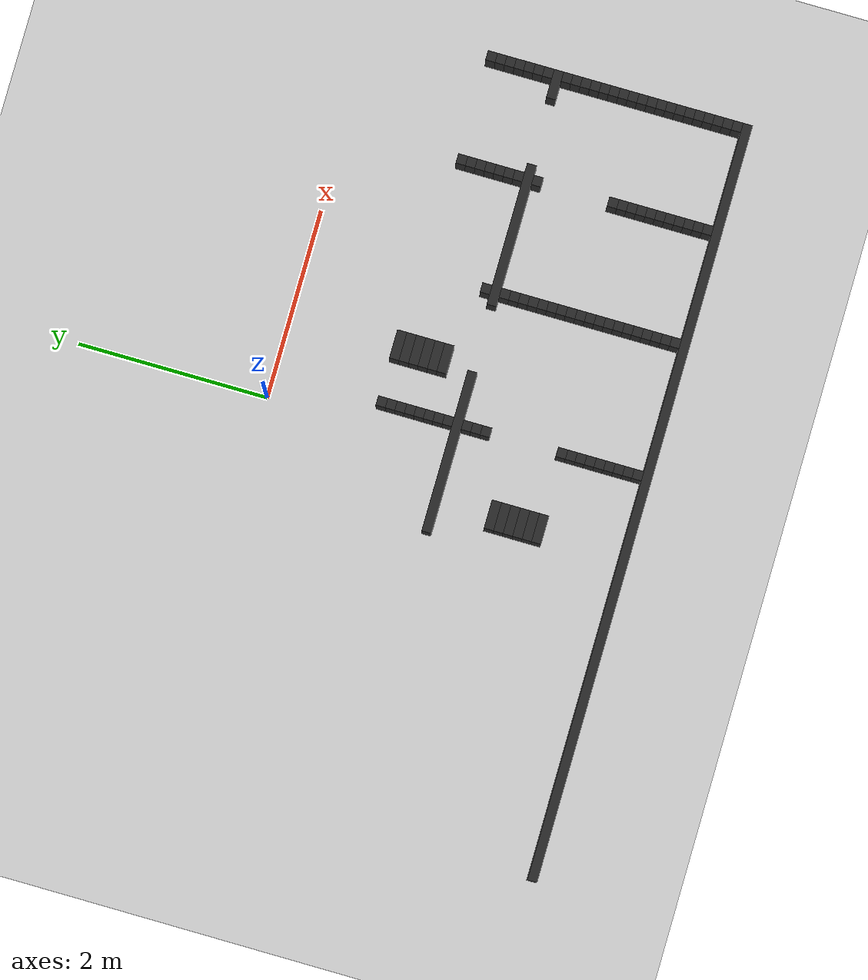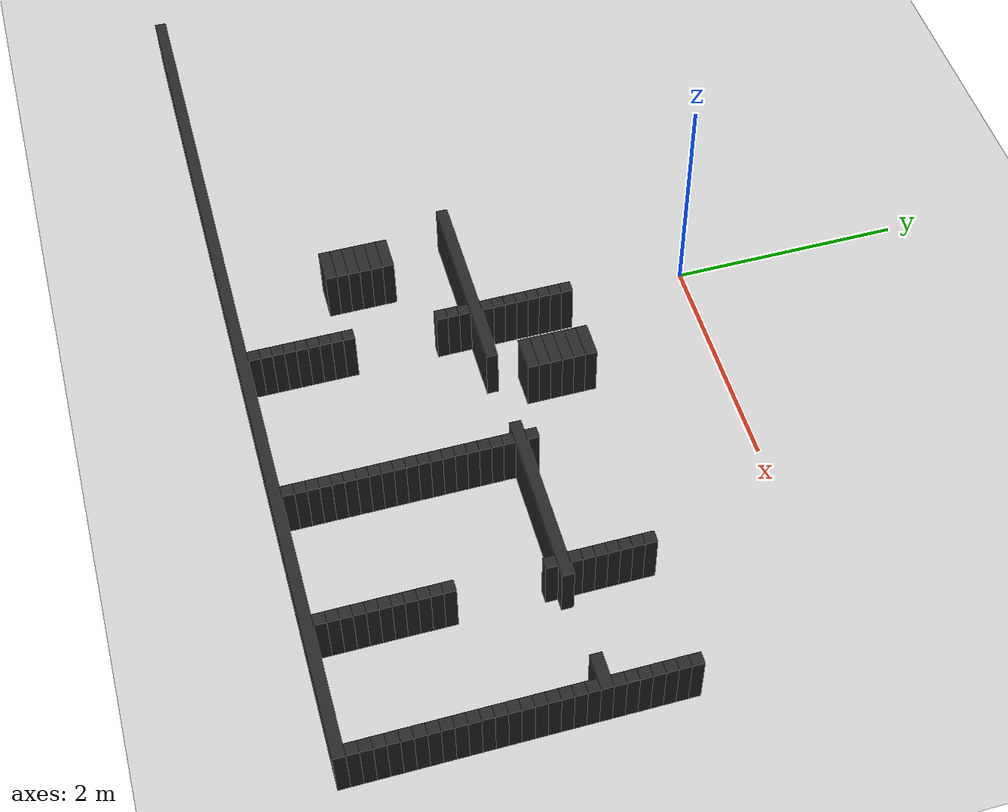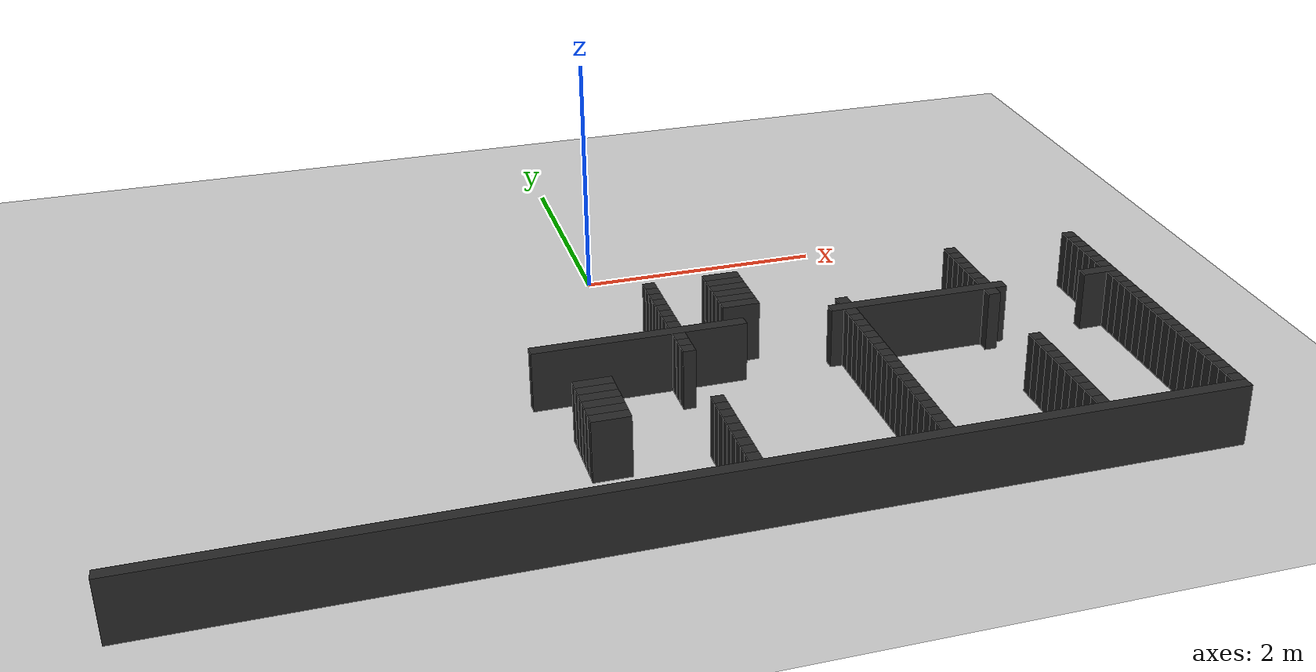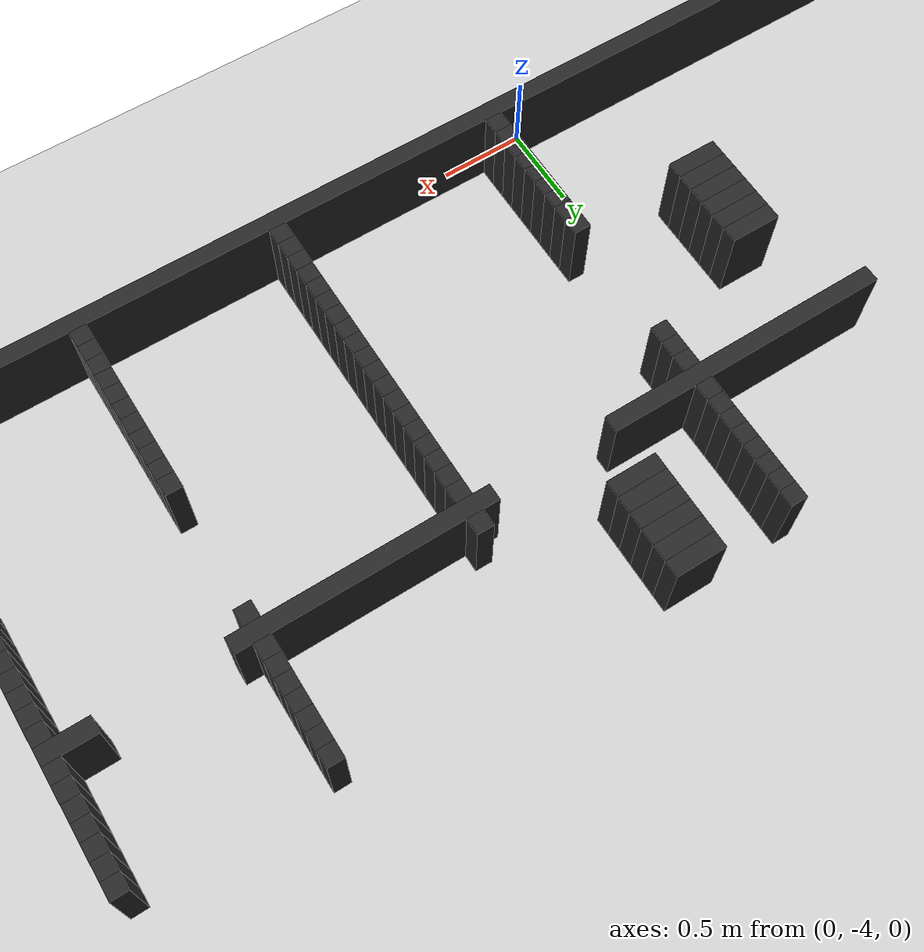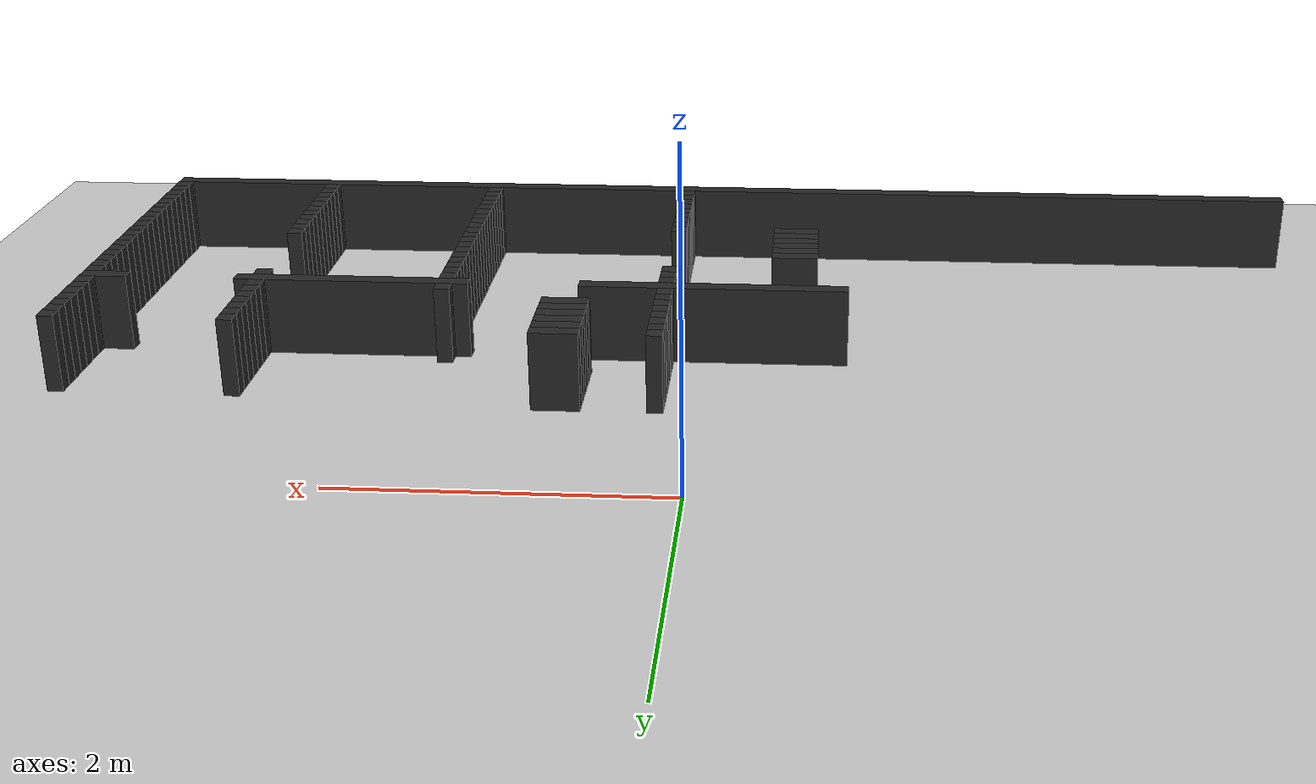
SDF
<sdf version="1.6">
 <world name="stress_maze_world">
  <include><uri>model://sun</uri></include>
  <include><uri>model://ground_plane</uri></include>
  <model name="wall_000_000">
   <static>true</static>
   <pose>0.00000 -3.95000 0.25 0 0 0</pose>
   <link name="link">
    <collision name="collision"><geometry><box><size>8.00000 0.10000 0.5</size></box></geometry></collision>
    <visual name="visual">
     <geometry><box><size>8.00000 0.10000 0.5</size></box></geometry>
     <material><ambient>0.12 0.12 0.12 1</ambient><diffuse>0.15 0.15 0.15 1</diffuse></material>
    </visual>
   </link>
  </model>
  <model name="wall_001_042">
   <static>true</static>
   <pose>0.25000 -3.85000 0.25 0 0 0</pose>
   <link name="link">
    <collision name="collision"><geometry><box><size>0.10000 0.10000 0.5</size></box></geometry></collision>
    <visual name="visual">
     <geometry><box><size>0.10000 0.10000 0.5</size></box></geometry>
     <material><ambient>0.12 0.12 0.12 1</ambient><diffuse>0.15 0.15 0.15 1</diffuse></material>
    </visual>
   </link>
  </model>
  <model name="wall_001_056">
   <static>true</static>
   <pose>1.65000 -3.85000 0.25 0 0 0</pose>
   <link name="link">
    <collision name="collision"><geometry><box><size>0.10000 0.10000 0.5</size></box></geometry></collision>
    <visual name="visual">
     <geometry><box><size>0.10000 0.10000 0.5</size></box></geometry>
     <material><ambient>0.12 0.12 0.12 1</ambient><diffuse>0.15 0.15 0.15 1</diffuse></material>
    </visual>
   </link>
  </model>
  <model name="wall_001_068">
   <static>true</static>
   <pose>2.85000 -3.85000 0.25 0 0 0</pose>
   <link name="link">
    <collision name="collision"><geometry><box><size>0.10000 0.10000 0.5</size></box></geometry></collision>
    <visual name="visual">
     <geometry><box><size>0.10000 0.10000 0.5</size></box></geometry>
     <material><ambient>0.12 0.12 0.12 1</ambient><diffuse>0.15 0.15 0.15 1</diffuse></material>
    </visual>
   </link>
  </model>
  <model name="wall_001_079">
   <static>true</static>
   <pose>3.95000 -3.85000 0.25 0 0 0</pose>
   <link name="link">
    <collision name="collision"><geometry><box><size>0.10000 0.10000 0.5</size></box></geometry></collision>
    <visual name="visual">
     <geometry><box><size>0.10000 0.10000 0.5</size></box></geometry>
     <material><ambient>0.12 0.12 0.12 1</ambient><diffuse>0.15 0.15 0.15 1</diffuse></material>
    </visual>
   </link>
  </model>
  <model name="wall_002_042">
   <static>true</static>
   <pose>0.25000 -3.75000 0.25 0 0 0</pose>
   <link name="link">
    <collision name="collision"><geometry><box><size>0.10000 0.10000 0.5</size></box></geometry></collision>
    <visual name="visual">
     <geometry><box><size>0.10000 0.10000 0.5</size></box></geometry>
     <material><ambient>0.12 0.12 0.12 1</ambient><diffuse>0.15 0.15 0.15 1</diffuse></material>
    </visual>
   </link>
  </model>
  <model name="wall_002_056">
   <static>true</static>
   <pose>1.65000 -3.75000 0.25 0 0 0</pose>
   <link name="link">
    <collision name="collision"><geometry><box><size>0.10000 0.10000 0.5</size></box></geometry></collision>
    <visual name="visual">
     <geometry><box><size>0.10000 0.10000 0.5</size></box></geometry>
     <material><ambient>0.12 0.12 0.12 1</ambient><diffuse>0.15 0.15 0.15 1</diffuse></material>
    </visual>
   </link>
  </model>
  <model name="wall_002_068">
   <static>true</static>
   <pose>2.85000 -3.75000 0.25 0 0 0</pose>
   <link name="link">
    <collision name="collision"><geometry><box><size>0.10000 0.10000 0.5</size></box></geometry></collision>
    <visual name="visual">
     <geometry><box><size>0.10000 0.10000 0.5</size></box></geometry>
     <material><ambient>0.12 0.12 0.12 1</ambient><diffuse>0.15 0.15 0.15 1</diffuse></material>
    </visual>
   </link>
  </model>
  <model name="wall_002_079">
   <static>true</static>
   <pose>3.95000 -3.75000 0.25 0 0 0</pose>
   <link name="link">
    <collision name="collision"><geometry><box><size>0.10000 0.10000 0.5</size></box></geometry></collision>
    <visual name="visual">
     <geometry><box><size>0.10000 0.10000 0.5</size></box></geometry>
     <material><ambient>0.12 0.12 0.12 1</ambient><diffuse>0.15 0.15 0.15 1</diffuse></material>
    </visual>
   </link>
  </model>
  <model name="wall_003_042">
   <static>true</static>
   <pose>0.25000 -3.65000 0.25 0 0 0</pose>
   <link name="link">
    <collision name="collision"><geometry><box><size>0.10000 0.10000 0.5</size></box></geometry></collision>
    <visual name="visual">
     <geometry><box><size>0.10000 0.10000 0.5</size></box></geometry>
     <material><ambient>0.12 0.12 0.12 1</ambient><diffuse>0.15 0.15 0.15 1</diffuse></material>
    </visual>
   </link>
  </model>
  <model name="wall_003_056">
   <static>true</static>
   <pose>1.65000 -3.65000 0.25 0 0 0</pose>
   <link name="link">
    <collision name="collision"><geometry><box><size>0.10000 0.10000 0.5</size></box></geometry></collision>
    <visual name="visual">
     <geometry><box><size>0.10000 0.10000 0.5</size></box></geometry>
     <material><ambient>0.12 0.12 0.12 1</ambient><diffuse>0.15 0.15 0.15 1</diffuse></material>
    </visual>
   </link>
  </model>
  <model name="wall_003_068">
   <static>true</static>
   <pose>2.85000 -3.65000 0.25 0 0 0</pose>
   <link name="link">
    <collision name="collision"><geometry><box><size>0.10000 0.10000 0.5</size></box></geometry></collision>
    <visual name="visual">
     <geometry><box><size>0.10000 0.10000 0.5</size></box></geometry>
     <material><ambient>0.12 0.12 0.12 1</ambient><diffuse>0.15 0.15 0.15 1</diffuse></material>
    </visual>
   </link>
  </model>
  <model name="wall_003_079">
   <static>true</static>
   <pose>3.95000 -3.65000 0.25 0 0 0</pose>
   <link name="link">
    <collision name="collision"><geometry><box><size>0.10000 0.10000 0.5</size></box></geometry></collision>
    <visual name="visual">
     <geometry><box><size>0.10000 0.10000 0.5</size></box></geometry>
     <material><ambient>0.12 0.12 0.12 1</ambient><diffuse>0.15 0.15 0.15 1</diffuse></material>
    </visual>
   </link>
  </model>
  <model name="wall_004_042">
   <static>true</static>
   <pose>0.25000 -3.55000 0.25 0 0 0</pose>
   <link name="link">
    <collision name="collision"><geometry><box><size>0.10000 0.10000 0.5</size></box></geometry></collision>
    <visual name="visual">
     <geometry><box><size>0.10000 0.10000 0.5</size></box></geometry>
     <material><ambient>0.12 0.12 0.12 1</ambient><diffuse>0.15 0.15 0.15 1</diffuse></material>
    </visual>
   </link>
  </model>
  <model name="wall_004_056">
   <static>true</static>
   <pose>1.65000 -3.55000 0.25 0 0 0</pose>
   <link name="link">
    <collision name="collision"><geometry><box><size>0.10000 0.10000 0.5</size></box></geometry></collision>
    <visual name="visual">
     <geometry><box><size>0.10000 0.10000 0.5</size></box></geometry>
     <material><ambient>0.12 0.12 0.12 1</ambient><diffuse>0.15 0.15 0.15 1</diffuse></material>
    </visual>
   </link>
  </model>
  <model name="wall_004_068">
   <static>true</static>
   <pose>2.85000 -3.55000 0.25 0 0 0</pose>
   <link name="link">
    <collision name="collision"><geometry><box><size>0.10000 0.10000 0.5</size></box></geometry></collision>
    <visual name="visual">
     <geometry><box><size>0.10000 0.10000 0.5</size></box></geometry>
     <material><ambient>0.12 0.12 0.12 1</ambient><diffuse>0.15 0.15 0.15 1</diffuse></material>
    </visual>
   </link>
  </model>
  <model name="wall_004_079">
   <static>true</static>
   <pose>3.95000 -3.55000 0.25 0 0 0</pose>
   <link name="link">
    <collision name="collision"><geometry><box><size>0.10000 0.10000 0.5</size></box></geometry></collision>
    <visual name="visual">
     <geometry><box><size>0.10000 0.10000 0.5</size></box></geometry>
     <material><ambient>0.12 0.12 0.12 1</ambient><diffuse>0.15 0.15 0.15 1</diffuse></material>
    </visual>
   </link>
  </model>
  <model name="wall_005_042">
   <static>true</static>
   <pose>0.25000 -3.45000 0.25 0 0 0</pose>
   <link name="link">
    <collision name="collision"><geometry><box><size>0.10000 0.10000 0.5</size></box></geometry></collision>
    <visual name="visual">
     <geometry><box><size>0.10000 0.10000 0.5</size></box></geometry>
     <material><ambient>0.12 0.12 0.12 1</ambient><diffuse>0.15 0.15 0.15 1</diffuse></material>
    </visual>
   </link>
  </model>
  <model name="wall_005_056">
   <static>true</static>
   <pose>1.65000 -3.45000 0.25 0 0 0</pose>
   <link name="link">
    <collision name="collision"><geometry><box><size>0.10000 0.10000 0.5</size></box></geometry></collision>
    <visual name="visual">
     <geometry><box><size>0.10000 0.10000 0.5</size></box></geometry>
     <material><ambient>0.12 0.12 0.12 1</ambient><diffuse>0.15 0.15 0.15 1</diffuse></material>
    </visual>
   </link>
  </model>
  <model name="wall_005_068">
   <static>true</static>
   <pose>2.85000 -3.45000 0.25 0 0 0</pose>
   <link name="link">
    <collision name="collision"><geometry><box><size>0.10000 0.10000 0.5</size></box></geometry></collision>
    <visual name="visual">
     <geometry><box><size>0.10000 0.10000 0.5</size></box></geometry>
     <material><ambient>0.12 0.12 0.12 1</ambient><diffuse>0.15 0.15 0.15 1</diffuse></material>
    </visual>
   </link>
  </model>
  <model name="wall_005_079">
   <static>true</static>
   <pose>3.95000 -3.45000 0.25 0 0 0</pose>
   <link name="link">
    <collision name="collision"><geometry><box><size>0.10000 0.10000 0.5</size></box></geometry></collision>
    <visual name="visual">
     <geometry><box><size>0.10000 0.10000 0.5</size></box></geometry>
     <material><ambient>0.12 0.12 0.12 1</ambient><diffuse>0.15 0.15 0.15 1</diffuse></material>
    </visual>
   </link>
  </model>
  <model name="wall_006_042">
   <static>true</static>
   <pose>0.25000 -3.35000 0.25 0 0 0</pose>
   <link name="link">
    <collision name="collision"><geometry><box><size>0.10000 0.10000 0.5</size></box></geometry></collision>
    <visual name="visual">
     <geometry><box><size>0.10000 0.10000 0.5</size></box></geometry>
     <material><ambient>0.12 0.12 0.12 1</ambient><diffuse>0.15 0.15 0.15 1</diffuse></material>
    </visual>
   </link>
  </model>
  <model name="wall_006_056">
   <static>true</static>
   <pose>1.65000 -3.35000 0.25 0 0 0</pose>
   <link name="link">
    <collision name="collision"><geometry><box><size>0.10000 0.10000 0.5</size></box></geometry></collision>
    <visual name="visual">
     <geometry><box><size>0.10000 0.10000 0.5</size></box></geometry>
     <material><ambient>0.12 0.12 0.12 1</ambient><diffuse>0.15 0.15 0.15 1</diffuse></material>
    </visual>
   </link>
  </model>
  <model name="wall_006_068">
   <static>true</static>
   <pose>2.85000 -3.35000 0.25 0 0 0</pose>
   <link name="link">
    <collision name="collision"><geometry><box><size>0.10000 0.10000 0.5</size></box></geometry></collision>
    <visual name="visual">
     <geometry><box><size>0.10000 0.10000 0.5</size></box></geometry>
     <material><ambient>0.12 0.12 0.12 1</ambient><diffuse>0.15 0.15 0.15 1</diffuse></material>
    </visual>
   </link>
  </model>
  <model name="wall_006_079">
   <static>true</static>
   <pose>3.95000 -3.35000 0.25 0 0 0</pose>
   <link name="link">
    <collision name="collision"><geometry><box><size>0.10000 0.10000 0.5</size></box></geometry></collision>
    <visual name="visual">
     <geometry><box><size>0.10000 0.10000 0.5</size></box></geometry>
     <material><ambient>0.12 0.12 0.12 1</ambient><diffuse>0.15 0.15 0.15 1</diffuse></material>
    </visual>
   </link>
  </model>
  <model name="wall_007_042">
   <static>true</static>
   <pose>0.25000 -3.25000 0.25 0 0 0</pose>
   <link name="link">
    <collision name="collision"><geometry><box><size>0.10000 0.10000 0.5</size></box></geometry></collision>
    <visual name="visual">
     <geometry><box><size>0.10000 0.10000 0.5</size></box></geometry>
     <material><ambient>0.12 0.12 0.12 1</ambient><diffuse>0.15 0.15 0.15 1</diffuse></material>
    </visual>
   </link>
  </model>
  <model name="wall_007_056">
   <static>true</static>
   <pose>1.65000 -3.25000 0.25 0 0 0</pose>
   <link name="link">
    <collision name="collision"><geometry><box><size>0.10000 0.10000 0.5</size></box></geometry></collision>
    <visual name="visual">
     <geometry><box><size>0.10000 0.10000 0.5</size></box></geometry>
     <material><ambient>0.12 0.12 0.12 1</ambient><diffuse>0.15 0.15 0.15 1</diffuse></material>
    </visual>
   </link>
  </model>
  <model name="wall_007_068">
   <static>true</static>
   <pose>2.85000 -3.25000 0.25 0 0 0</pose>
   <link name="link">
    <collision name="collision"><geometry><box><size>0.10000 0.10000 0.5</size></box></geometry></collision>
    <visual name="visual">
     <geometry><box><size>0.10000 0.10000 0.5</size></box></geometry>
     <material><ambient>0.12 0.12 0.12 1</ambient><diffuse>0.15 0.15 0.15 1</diffuse></material>
    </visual>
   </link>
  </model>
  <model name="wall_007_079">
   <static>true</static>
   <pose>3.95000 -3.25000 0.25 0 0 0</pose>
   <link name="link">
    <collision name="collision"><geometry><box><size>0.10000 0.10000 0.5</size></box></geometry></collision>
    <visual name="visual">
     <geometry><box><size>0.10000 0.10000 0.5</size></box></geometry>
     <material><ambient>0.12 0.12 0.12 1</ambient><diffuse>0.15 0.15 0.15 1</diffuse></material>
    </visual>
   </link>
  </model>
  <model name="wall_008_042">
   <static>true</static>
   <pose>0.25000 -3.15000 0.25 0 0 0</pose>
   <link name="link">
    <collision name="collision"><geometry><box><size>0.10000 0.10000 0.5</size></box></geometry></collision>
    <visual name="visual">
     <geometry><box><size>0.10000 0.10000 0.5</size></box></geometry>
     <material><ambient>0.12 0.12 0.12 1</ambient><diffuse>0.15 0.15 0.15 1</diffuse></material>
    </visual>
   </link>
  </model>
  <model name="wall_008_056">
   <static>true</static>
   <pose>1.65000 -3.15000 0.25 0 0 0</pose>
   <link name="link">
    <collision name="collision"><geometry><box><size>0.10000 0.10000 0.5</size></box></geometry></collision>
    <visual name="visual">
     <geometry><box><size>0.10000 0.10000 0.5</size></box></geometry>
     <material><ambient>0.12 0.12 0.12 1</ambient><diffuse>0.15 0.15 0.15 1</diffuse></material>
    </visual>
   </link>
  </model>
  <model name="wall_008_068">
   <static>true</static>
   <pose>2.85000 -3.15000 0.25 0 0 0</pose>
   <link name="link">
    <collision name="collision"><geometry><box><size>0.10000 0.10000 0.5</size></box></geometry></collision>
    <visual name="visual">
     <geometry><box><size>0.10000 0.10000 0.5</size></box></geometry>
     <material><ambient>0.12 0.12 0.12 1</ambient><diffuse>0.15 0.15 0.15 1</diffuse></material>
    </visual>
   </link>
  </model>
  <model name="wall_008_079">
   <static>true</static>
   <pose>3.95000 -3.15000 0.25 0 0 0</pose>
   <link name="link">
    <collision name="collision"><geometry><box><size>0.10000 0.10000 0.5</size></box></geometry></collision>
    <visual name="visual">
     <geometry><box><size>0.10000 0.10000 0.5</size></box></geometry>
     <material><ambient>0.12 0.12 0.12 1</ambient><diffuse>0.15 0.15 0.15 1</diffuse></material>
    </visual>
   </link>
  </model>
  <model name="wall_009_033">
   <static>true</static>
   <pose>-0.55000 -3.05000 0.25 0 0 0</pose>
   <link name="link">
    <collision name="collision"><geometry><box><size>0.30000 0.10000 0.5</size></box></geometry></collision>
    <visual name="visual">
     <geometry><box><size>0.30000 0.10000 0.5</size></box></geometry>
     <material><ambient>0.12 0.12 0.12 1</ambient><diffuse>0.15 0.15 0.15 1</diffuse></material>
    </visual>
   </link>
  </model>
  <model name="wall_009_042">
   <static>true</static>
   <pose>0.25000 -3.05000 0.25 0 0 0</pose>
   <link name="link">
    <collision name="collision"><geometry><box><size>0.10000 0.10000 0.5</size></box></geometry></collision>
    <visual name="visual">
     <geometry><box><size>0.10000 0.10000 0.5</size></box></geometry>
     <material><ambient>0.12 0.12 0.12 1</ambient><diffuse>0.15 0.15 0.15 1</diffuse></material>
    </visual>
   </link>
  </model>
  <model name="wall_009_056">
   <static>true</static>
   <pose>1.65000 -3.05000 0.25 0 0 0</pose>
   <link name="link">
    <collision name="collision"><geometry><box><size>0.10000 0.10000 0.5</size></box></geometry></collision>
    <visual name="visual">
     <geometry><box><size>0.10000 0.10000 0.5</size></box></geometry>
     <material><ambient>0.12 0.12 0.12 1</ambient><diffuse>0.15 0.15 0.15 1</diffuse></material>
    </visual>
   </link>
  </model>
  <model name="wall_009_068">
   <static>true</static>
   <pose>2.85000 -3.05000 0.25 0 0 0</pose>
   <link name="link">
    <collision name="collision"><geometry><box><size>0.10000 0.10000 0.5</size></box></geometry></collision>
    <visual name="visual">
     <geometry><box><size>0.10000 0.10000 0.5</size></box></geometry>
     <material><ambient>0.12 0.12 0.12 1</ambient><diffuse>0.15 0.15 0.15 1</diffuse></material>
    </visual>
   </link>
  </model>
  <model name="wall_009_079">
   <static>true</static>
   <pose>3.95000 -3.05000 0.25 0 0 0</pose>
   <link name="link">
    <collision name="collision"><geometry><box><size>0.10000 0.10000 0.5</size></box></geometry></collision>
    <visual name="visual">
     <geometry><box><size>0.10000 0.10000 0.5</size></box></geometry>
     <material><ambient>0.12 0.12 0.12 1</ambient><diffuse>0.15 0.15 0.15 1</diffuse></material>
    </visual>
   </link>
  </model>
  <model name="wall_010_033">
   <static>true</static>
   <pose>-0.55000 -2.95000 0.25 0 0 0</pose>
   <link name="link">
    <collision name="collision"><geometry><box><size>0.30000 0.10000 0.5</size></box></geometry></collision>
    <visual name="visual">
     <geometry><box><size>0.30000 0.10000 0.5</size></box></geometry>
     <material><ambient>0.12 0.12 0.12 1</ambient><diffuse>0.15 0.15 0.15 1</diffuse></material>
    </visual>
   </link>
  </model>
  <model name="wall_010_056">
   <static>true</static>
   <pose>1.65000 -2.95000 0.25 0 0 0</pose>
   <link name="link">
    <collision name="collision"><geometry><box><size>0.10000 0.10000 0.5</size></box></geometry></collision>
    <visual name="visual">
     <geometry><box><size>0.10000 0.10000 0.5</size></box></geometry>
     <material><ambient>0.12 0.12 0.12 1</ambient><diffuse>0.15 0.15 0.15 1</diffuse></material>
    </visual>
   </link>
  </model>
  <model name="wall_010_068">
   <static>true</static>
   <pose>2.85000 -2.95000 0.25 0 0 0</pose>
   <link name="link">
    <collision name="collision"><geometry><box><size>0.10000 0.10000 0.5</size></box></geometry></collision>
    <visual name="visual">
     <geometry><box><size>0.10000 0.10000 0.5</size></box></geometry>
     <material><ambient>0.12 0.12 0.12 1</ambient><diffuse>0.15 0.15 0.15 1</diffuse></material>
    </visual>
   </link>
  </model>
  <model name="wall_010_079">
   <static>true</static>
   <pose>3.95000 -2.95000 0.25 0 0 0</pose>
   <link name="link">
    <collision name="collision"><geometry><box><size>0.10000 0.10000 0.5</size></box></geometry></collision>
    <visual name="visual">
     <geometry><box><size>0.10000 0.10000 0.5</size></box></geometry>
     <material><ambient>0.12 0.12 0.12 1</ambient><diffuse>0.15 0.15 0.15 1</diffuse></material>
    </visual>
   </link>
  </model>
  <model name="wall_011_033">
   <static>true</static>
   <pose>-0.55000 -2.85000 0.25 0 0 0</pose>
   <link name="link">
    <collision name="collision"><geometry><box><size>0.30000 0.10000 0.5</size></box></geometry></collision>
    <visual name="visual">
     <geometry><box><size>0.30000 0.10000 0.5</size></box></geometry>
     <material><ambient>0.12 0.12 0.12 1</ambient><diffuse>0.15 0.15 0.15 1</diffuse></material>
    </visual>
   </link>
  </model>
  <model name="wall_011_056">
   <static>true</static>
   <pose>1.65000 -2.85000 0.25 0 0 0</pose>
   <link name="link">
    <collision name="collision"><geometry><box><size>0.10000 0.10000 0.5</size></box></geometry></collision>
    <visual name="visual">
     <geometry><box><size>0.10000 0.10000 0.5</size></box></geometry>
     <material><ambient>0.12 0.12 0.12 1</ambient><diffuse>0.15 0.15 0.15 1</diffuse></material>
    </visual>
   </link>
  </model>
  <model name="wall_011_068">
   <static>true</static>
   <pose>2.85000 -2.85000 0.25 0 0 0</pose>
   <link name="link">
    <collision name="collision"><geometry><box><size>0.10000 0.10000 0.5</size></box></geometry></collision>
    <visual name="visual">
     <geometry><box><size>0.10000 0.10000 0.5</size></box></geometry>
     <material><ambient>0.12 0.12 0.12 1</ambient><diffuse>0.15 0.15 0.15 1</diffuse></material>
    </visual>
   </link>
  </model>
  <model name="wall_011_079">
   <static>true</static>
   <pose>3.95000 -2.85000 0.25 0 0 0</pose>
   <link name="link">
    <collision name="collision"><geometry><box><size>0.10000 0.10000 0.5</size></box></geometry></collision>
    <visual name="visual">
     <geometry><box><size>0.10000 0.10000 0.5</size></box></geometry>
     <material><ambient>0.12 0.12 0.12 1</ambient><diffuse>0.15 0.15 0.15 1</diffuse></material>
    </visual>
   </link>
  </model>
  <model name="wall_012_033">
   <static>true</static>
   <pose>-0.55000 -2.75000 0.25 0 0 0</pose>
   <link name="link">
    <collision name="collision"><geometry><box><size>0.30000 0.10000 0.5</size></box></geometry></collision>
    <visual name="visual">
     <geometry><box><size>0.30000 0.10000 0.5</size></box></geometry>
     <material><ambient>0.12 0.12 0.12 1</ambient><diffuse>0.15 0.15 0.15 1</diffuse></material>
    </visual>
   </link>
  </model>
  <model name="wall_012_056">
   <static>true</static>
   <pose>1.65000 -2.75000 0.25 0 0 0</pose>
   <link name="link">
    <collision name="collision"><geometry><box><size>0.10000 0.10000 0.5</size></box></geometry></collision>
    <visual name="visual">
     <geometry><box><size>0.10000 0.10000 0.5</size></box></geometry>
     <material><ambient>0.12 0.12 0.12 1</ambient><diffuse>0.15 0.15 0.15 1</diffuse></material>
    </visual>
   </link>
  </model>
  <model name="wall_012_079">
   <static>true</static>
   <pose>3.95000 -2.75000 0.25 0 0 0</pose>
   <link name="link">
    <collision name="collision"><geometry><box><size>0.10000 0.10000 0.5</size></box></geometry></collision>
    <visual name="visual">
     <geometry><box><size>0.10000 0.10000 0.5</size></box></geometry>
     <material><ambient>0.12 0.12 0.12 1</ambient><diffuse>0.15 0.15 0.15 1</diffuse></material>
    </visual>
   </link>
  </model>
  <model name="wall_013_033">
   <static>true</static>
   <pose>-0.55000 -2.65000 0.25 0 0 0</pose>
   <link name="link">
    <collision name="collision"><geometry><box><size>0.30000 0.10000 0.5</size></box></geometry></collision>
    <visual name="visual">
     <geometry><box><size>0.30000 0.10000 0.5</size></box></geometry>
     <material><ambient>0.12 0.12 0.12 1</ambient><diffuse>0.15 0.15 0.15 1</diffuse></material>
    </visual>
   </link>
  </model>
  <model name="wall_013_056">
   <static>true</static>
   <pose>1.65000 -2.65000 0.25 0 0 0</pose>
   <link name="link">
    <collision name="collision"><geometry><box><size>0.10000 0.10000 0.5</size></box></geometry></collision>
    <visual name="visual">
     <geometry><box><size>0.10000 0.10000 0.5</size></box></geometry>
     <material><ambient>0.12 0.12 0.12 1</ambient><diffuse>0.15 0.15 0.15 1</diffuse></material>
    </visual>
   </link>
  </model>
  <model name="wall_013_079">
   <static>true</static>
   <pose>3.95000 -2.65000 0.25 0 0 0</pose>
   <link name="link">
    <collision name="collision"><geometry><box><size>0.10000 0.10000 0.5</size></box></geometry></collision>
    <visual name="visual">
     <geometry><box><size>0.10000 0.10000 0.5</size></box></geometry>
     <material><ambient>0.12 0.12 0.12 1</ambient><diffuse>0.15 0.15 0.15 1</diffuse></material>
    </visual>
   </link>
  </model>
  <model name="wall_014_033">
   <static>true</static>
   <pose>-0.55000 -2.55000 0.25 0 0 0</pose>
   <link name="link">
    <collision name="collision"><geometry><box><size>0.30000 0.10000 0.5</size></box></geometry></collision>
    <visual name="visual">
     <geometry><box><size>0.30000 0.10000 0.5</size></box></geometry>
     <material><ambient>0.12 0.12 0.12 1</ambient><diffuse>0.15 0.15 0.15 1</diffuse></material>
    </visual>
   </link>
  </model>
  <model name="wall_014_056">
   <static>true</static>
   <pose>1.65000 -2.55000 0.25 0 0 0</pose>
   <link name="link">
    <collision name="collision"><geometry><box><size>0.10000 0.10000 0.5</size></box></geometry></collision>
    <visual name="visual">
     <geometry><box><size>0.10000 0.10000 0.5</size></box></geometry>
     <material><ambient>0.12 0.12 0.12 1</ambient><diffuse>0.15 0.15 0.15 1</diffuse></material>
    </visual>
   </link>
  </model>
  <model name="wall_014_079">
   <static>true</static>
   <pose>3.95000 -2.55000 0.25 0 0 0</pose>
   <link name="link">
    <collision name="collision"><geometry><box><size>0.10000 0.10000 0.5</size></box></geometry></collision>
    <visual name="visual">
     <geometry><box><size>0.10000 0.10000 0.5</size></box></geometry>
     <material><ambient>0.12 0.12 0.12 1</ambient><diffuse>0.15 0.15 0.15 1</diffuse></material>
    </visual>
   </link>
  </model>
  <model name="wall_015_056">
   <static>true</static>
   <pose>1.65000 -2.45000 0.25 0 0 0</pose>
   <link name="link">
    <collision name="collision"><geometry><box><size>0.10000 0.10000 0.5</size></box></geometry></collision>
    <visual name="visual">
     <geometry><box><size>0.10000 0.10000 0.5</size></box></geometry>
     <material><ambient>0.12 0.12 0.12 1</ambient><diffuse>0.15 0.15 0.15 1</diffuse></material>
    </visual>
   </link>
  </model>
  <model name="wall_015_079">
   <static>true</static>
   <pose>3.95000 -2.45000 0.25 0 0 0</pose>
   <link name="link">
    <collision name="collision"><geometry><box><size>0.10000 0.10000 0.5</size></box></geometry></collision>
    <visual name="visual">
     <geometry><box><size>0.10000 0.10000 0.5</size></box></geometry>
     <material><ambient>0.12 0.12 0.12 1</ambient><diffuse>0.15 0.15 0.15 1</diffuse></material>
    </visual>
   </link>
  </model>
  <model name="wall_016_056">
   <static>true</static>
   <pose>1.65000 -2.35000 0.25 0 0 0</pose>
   <link name="link">
    <collision name="collision"><geometry><box><size>0.10000 0.10000 0.5</size></box></geometry></collision>
    <visual name="visual">
     <geometry><box><size>0.10000 0.10000 0.5</size></box></geometry>
     <material><ambient>0.12 0.12 0.12 1</ambient><diffuse>0.15 0.15 0.15 1</diffuse></material>
    </visual>
   </link>
  </model>
  <model name="wall_016_079">
   <static>true</static>
   <pose>3.95000 -2.35000 0.25 0 0 0</pose>
   <link name="link">
    <collision name="collision"><geometry><box><size>0.10000 0.10000 0.5</size></box></geometry></collision>
    <visual name="visual">
     <geometry><box><size>0.10000 0.10000 0.5</size></box></geometry>
     <material><ambient>0.12 0.12 0.12 1</ambient><diffuse>0.15 0.15 0.15 1</diffuse></material>
    </visual>
   </link>
  </model>
  <model name="wall_017_042">
   <static>true</static>
   <pose>0.25000 -2.25000 0.25 0 0 0</pose>
   <link name="link">
    <collision name="collision"><geometry><box><size>0.10000 0.10000 0.5</size></box></geometry></collision>
    <visual name="visual">
     <geometry><box><size>0.10000 0.10000 0.5</size></box></geometry>
     <material><ambient>0.12 0.12 0.12 1</ambient><diffuse>0.15 0.15 0.15 1</diffuse></material>
    </visual>
   </link>
  </model>
  <model name="wall_017_056">
   <static>true</static>
   <pose>1.65000 -2.25000 0.25 0 0 0</pose>
   <link name="link">
    <collision name="collision"><geometry><box><size>0.10000 0.10000 0.5</size></box></geometry></collision>
    <visual name="visual">
     <geometry><box><size>0.10000 0.10000 0.5</size></box></geometry>
     <material><ambient>0.12 0.12 0.12 1</ambient><diffuse>0.15 0.15 0.15 1</diffuse></material>
    </visual>
   </link>
  </model>
  <model name="wall_017_079">
   <static>true</static>
   <pose>3.95000 -2.25000 0.25 0 0 0</pose>
   <link name="link">
    <collision name="collision"><geometry><box><size>0.10000 0.10000 0.5</size></box></geometry></collision>
    <visual name="visual">
     <geometry><box><size>0.10000 0.10000 0.5</size></box></geometry>
     <material><ambient>0.12 0.12 0.12 1</ambient><diffuse>0.15 0.15 0.15 1</diffuse></material>
    </visual>
   </link>
  </model>
  <model name="wall_018_042">
   <static>true</static>
   <pose>0.25000 -2.15000 0.25 0 0 0</pose>
   <link name="link">
    <collision name="collision"><geometry><box><size>0.10000 0.10000 0.5</size></box></geometry></collision>
    <visual name="visual">
     <geometry><box><size>0.10000 0.10000 0.5</size></box></geometry>
     <material><ambient>0.12 0.12 0.12 1</ambient><diffuse>0.15 0.15 0.15 1</diffuse></material>
    </visual>
   </link>
  </model>
  <model name="wall_018_056">
   <static>true</static>
   <pose>1.65000 -2.15000 0.25 0 0 0</pose>
   <link name="link">
    <collision name="collision"><geometry><box><size>0.10000 0.10000 0.5</size></box></geometry></collision>
    <visual name="visual">
     <geometry><box><size>0.10000 0.10000 0.5</size></box></geometry>
     <material><ambient>0.12 0.12 0.12 1</ambient><diffuse>0.15 0.15 0.15 1</diffuse></material>
    </visual>
   </link>
  </model>
  <model name="wall_018_079">
   <static>true</static>
   <pose>3.95000 -2.15000 0.25 0 0 0</pose>
   <link name="link">
    <collision name="collision"><geometry><box><size>0.10000 0.10000 0.5</size></box></geometry></collision>
    <visual name="visual">
     <geometry><box><size>0.10000 0.10000 0.5</size></box></geometry>
     <material><ambient>0.12 0.12 0.12 1</ambient><diffuse>0.15 0.15 0.15 1</diffuse></material>
    </visual>
   </link>
  </model>
  <model name="wall_019_042">
   <static>true</static>
   <pose>0.25000 -2.05000 0.25 0 0 0</pose>
   <link name="link">
    <collision name="collision"><geometry><box><size>0.10000 0.10000 0.5</size></box></geometry></collision>
    <visual name="visual">
     <geometry><box><size>0.10000 0.10000 0.5</size></box></geometry>
     <material><ambient>0.12 0.12 0.12 1</ambient><diffuse>0.15 0.15 0.15 1</diffuse></material>
    </visual>
   </link>
  </model>
  <model name="wall_019_056">
   <static>true</static>
   <pose>1.65000 -2.05000 0.25 0 0 0</pose>
   <link name="link">
    <collision name="collision"><geometry><box><size>0.10000 0.10000 0.5</size></box></geometry></collision>
    <visual name="visual">
     <geometry><box><size>0.10000 0.10000 0.5</size></box></geometry>
     <material><ambient>0.12 0.12 0.12 1</ambient><diffuse>0.15 0.15 0.15 1</diffuse></material>
    </visual>
   </link>
  </model>
  <model name="wall_019_068">
   <static>true</static>
   <pose>2.85000 -2.05000 0.25 0 0 0</pose>
   <link name="link">
    <collision name="collision"><geometry><box><size>0.10000 0.10000 0.5</size></box></geometry></collision>
    <visual name="visual">
     <geometry><box><size>0.10000 0.10000 0.5</size></box></geometry>
     <material><ambient>0.12 0.12 0.12 1</ambient><diffuse>0.15 0.15 0.15 1</diffuse></material>
    </visual>
   </link>
  </model>
  <model name="wall_019_079">
   <static>true</static>
   <pose>3.95000 -2.05000 0.25 0 0 0</pose>
   <link name="link">
    <collision name="collision"><geometry><box><size>0.10000 0.10000 0.5</size></box></geometry></collision>
    <visual name="visual">
     <geometry><box><size>0.10000 0.10000 0.5</size></box></geometry>
     <material><ambient>0.12 0.12 0.12 1</ambient><diffuse>0.15 0.15 0.15 1</diffuse></material>
    </visual>
   </link>
  </model>
  <model name="wall_020_031">
   <static>true</static>
   <pose>-0.05000 -1.95000 0.25 0 0 0</pose>
   <link name="link">
    <collision name="collision"><geometry><box><size>1.70000 0.10000 0.5</size></box></geometry></collision>
    <visual name="visual">
     <geometry><box><size>1.70000 0.10000 0.5</size></box></geometry>
     <material><ambient>0.12 0.12 0.12 1</ambient><diffuse>0.15 0.15 0.15 1</diffuse></material>
    </visual>
   </link>
  </model>
  <model name="wall_020_055">
   <static>true</static>
   <pose>2.25000 -1.95000 0.25 0 0 0</pose>
   <link name="link">
    <collision name="collision"><geometry><box><size>1.50000 0.10000 0.5</size></box></geometry></collision>
    <visual name="visual">
     <geometry><box><size>1.50000 0.10000 0.5</size></box></geometry>
     <material><ambient>0.12 0.12 0.12 1</ambient><diffuse>0.15 0.15 0.15 1</diffuse></material>
    </visual>
   </link>
  </model>
  <model name="wall_020_077">
   <static>true</static>
   <pose>3.85000 -1.95000 0.25 0 0 0</pose>
   <link name="link">
    <collision name="collision"><geometry><box><size>0.30000 0.10000 0.5</size></box></geometry></collision>
    <visual name="visual">
     <geometry><box><size>0.30000 0.10000 0.5</size></box></geometry>
     <material><ambient>0.12 0.12 0.12 1</ambient><diffuse>0.15 0.15 0.15 1</diffuse></material>
    </visual>
   </link>
  </model>
  <model name="wall_021_042">
   <static>true</static>
   <pose>0.25000 -1.85000 0.25 0 0 0</pose>
   <link name="link">
    <collision name="collision"><geometry><box><size>0.10000 0.10000 0.5</size></box></geometry></collision>
    <visual name="visual">
     <geometry><box><size>0.10000 0.10000 0.5</size></box></geometry>
     <material><ambient>0.12 0.12 0.12 1</ambient><diffuse>0.15 0.15 0.15 1</diffuse></material>
    </visual>
   </link>
  </model>
  <model name="wall_021_056">
   <static>true</static>
   <pose>1.65000 -1.85000 0.25 0 0 0</pose>
   <link name="link">
    <collision name="collision"><geometry><box><size>0.10000 0.10000 0.5</size></box></geometry></collision>
    <visual name="visual">
     <geometry><box><size>0.10000 0.10000 0.5</size></box></geometry>
     <material><ambient>0.12 0.12 0.12 1</ambient><diffuse>0.15 0.15 0.15 1</diffuse></material>
    </visual>
   </link>
  </model>
  <model name="wall_021_068">
   <static>true</static>
   <pose>2.85000 -1.85000 0.25 0 0 0</pose>
   <link name="link">
    <collision name="collision"><geometry><box><size>0.10000 0.10000 0.5</size></box></geometry></collision>
    <visual name="visual">
     <geometry><box><size>0.10000 0.10000 0.5</size></box></geometry>
     <material><ambient>0.12 0.12 0.12 1</ambient><diffuse>0.15 0.15 0.15 1</diffuse></material>
    </visual>
   </link>
  </model>
  <model name="wall_021_079">
   <static>true</static>
   <pose>3.95000 -1.85000 0.25 0 0 0</pose>
   <link name="link">
    <collision name="collision"><geometry><box><size>0.10000 0.10000 0.5</size></box></geometry></collision>
    <visual name="visual">
     <geometry><box><size>0.10000 0.10000 0.5</size></box></geometry>
     <material><ambient>0.12 0.12 0.12 1</ambient><diffuse>0.15 0.15 0.15 1</diffuse></material>
    </visual>
   </link>
  </model>
  <model name="wall_022_042">
   <static>true</static>
   <pose>0.25000 -1.75000 0.25 0 0 0</pose>
   <link name="link">
    <collision name="collision"><geometry><box><size>0.10000 0.10000 0.5</size></box></geometry></collision>
    <visual name="visual">
     <geometry><box><size>0.10000 0.10000 0.5</size></box></geometry>
     <material><ambient>0.12 0.12 0.12 1</ambient><diffuse>0.15 0.15 0.15 1</diffuse></material>
    </visual>
   </link>
  </model>
  <model name="wall_022_068">
   <static>true</static>
   <pose>2.85000 -1.75000 0.25 0 0 0</pose>
   <link name="link">
    <collision name="collision"><geometry><box><size>0.10000 0.10000 0.5</size></box></geometry></collision>
    <visual name="visual">
     <geometry><box><size>0.10000 0.10000 0.5</size></box></geometry>
     <material><ambient>0.12 0.12 0.12 1</ambient><diffuse>0.15 0.15 0.15 1</diffuse></material>
    </visual>
   </link>
  </model>
  <model name="wall_022_079">
   <static>true</static>
   <pose>3.95000 -1.75000 0.25 0 0 0</pose>
   <link name="link">
    <collision name="collision"><geometry><box><size>0.10000 0.10000 0.5</size></box></geometry></collision>
    <visual name="visual">
     <geometry><box><size>0.10000 0.10000 0.5</size></box></geometry>
     <material><ambient>0.12 0.12 0.12 1</ambient><diffuse>0.15 0.15 0.15 1</diffuse></material>
    </visual>
   </link>
  </model>
  <model name="wall_023_042">
   <static>true</static>
   <pose>0.25000 -1.65000 0.25 0 0 0</pose>
   <link name="link">
    <collision name="collision"><geometry><box><size>0.10000 0.10000 0.5</size></box></geometry></collision>
    <visual name="visual">
     <geometry><box><size>0.10000 0.10000 0.5</size></box></geometry>
     <material><ambient>0.12 0.12 0.12 1</ambient><diffuse>0.15 0.15 0.15 1</diffuse></material>
    </visual>
   </link>
  </model>
  <model name="wall_023_047">
   <static>true</static>
   <pose>0.85000 -1.65000 0.25 0 0 0</pose>
   <link name="link">
    <collision name="collision"><geometry><box><size>0.30000 0.10000 0.5</size></box></geometry></collision>
    <visual name="visual">
     <geometry><box><size>0.30000 0.10000 0.5</size></box></geometry>
     <material><ambient>0.12 0.12 0.12 1</ambient><diffuse>0.15 0.15 0.15 1</diffuse></material>
    </visual>
   </link>
  </model>
  <model name="wall_023_068">
   <static>true</static>
   <pose>2.85000 -1.65000 0.25 0 0 0</pose>
   <link name="link">
    <collision name="collision"><geometry><box><size>0.10000 0.10000 0.5</size></box></geometry></collision>
    <visual name="visual">
     <geometry><box><size>0.10000 0.10000 0.5</size></box></geometry>
     <material><ambient>0.12 0.12 0.12 1</ambient><diffuse>0.15 0.15 0.15 1</diffuse></material>
    </visual>
   </link>
  </model>
  <model name="wall_023_079">
   <static>true</static>
   <pose>3.95000 -1.65000 0.25 0 0 0</pose>
   <link name="link">
    <collision name="collision"><geometry><box><size>0.10000 0.10000 0.5</size></box></geometry></collision>
    <visual name="visual">
     <geometry><box><size>0.10000 0.10000 0.5</size></box></geometry>
     <material><ambient>0.12 0.12 0.12 1</ambient><diffuse>0.15 0.15 0.15 1</diffuse></material>
    </visual>
   </link>
  </model>
  <model name="wall_024_042">
   <static>true</static>
   <pose>0.25000 -1.55000 0.25 0 0 0</pose>
   <link name="link">
    <collision name="collision"><geometry><box><size>0.10000 0.10000 0.5</size></box></geometry></collision>
    <visual name="visual">
     <geometry><box><size>0.10000 0.10000 0.5</size></box></geometry>
     <material><ambient>0.12 0.12 0.12 1</ambient><diffuse>0.15 0.15 0.15 1</diffuse></material>
    </visual>
   </link>
  </model>
  <model name="wall_024_047">
   <static>true</static>
   <pose>0.85000 -1.55000 0.25 0 0 0</pose>
   <link name="link">
    <collision name="collision"><geometry><box><size>0.30000 0.10000 0.5</size></box></geometry></collision>
    <visual name="visual">
     <geometry><box><size>0.30000 0.10000 0.5</size></box></geometry>
     <material><ambient>0.12 0.12 0.12 1</ambient><diffuse>0.15 0.15 0.15 1</diffuse></material>
    </visual>
   </link>
  </model>
  <model name="wall_024_068">
   <static>true</static>
   <pose>2.85000 -1.55000 0.25 0 0 0</pose>
   <link name="link">
    <collision name="collision"><geometry><box><size>0.10000 0.10000 0.5</size></box></geometry></collision>
    <visual name="visual">
     <geometry><box><size>0.10000 0.10000 0.5</size></box></geometry>
     <material><ambient>0.12 0.12 0.12 1</ambient><diffuse>0.15 0.15 0.15 1</diffuse></material>
    </visual>
   </link>
  </model>
  <model name="wall_024_079">
   <static>true</static>
   <pose>3.95000 -1.55000 0.25 0 0 0</pose>
   <link name="link">
    <collision name="collision"><geometry><box><size>0.10000 0.10000 0.5</size></box></geometry></collision>
    <visual name="visual">
     <geometry><box><size>0.10000 0.10000 0.5</size></box></geometry>
     <material><ambient>0.12 0.12 0.12 1</ambient><diffuse>0.15 0.15 0.15 1</diffuse></material>
    </visual>
   </link>
  </model>
  <model name="wall_025_042">
   <static>true</static>
   <pose>0.25000 -1.45000 0.25 0 0 0</pose>
   <link name="link">
    <collision name="collision"><geometry><box><size>0.10000 0.10000 0.5</size></box></geometry></collision>
    <visual name="visual">
     <geometry><box><size>0.10000 0.10000 0.5</size></box></geometry>
     <material><ambient>0.12 0.12 0.12 1</ambient><diffuse>0.15 0.15 0.15 1</diffuse></material>
    </visual>
   </link>
  </model>
  <model name="wall_025_047">
   <static>true</static>
   <pose>0.85000 -1.45000 0.25 0 0 0</pose>
   <link name="link">
    <collision name="collision"><geometry><box><size>0.30000 0.10000 0.5</size></box></geometry></collision>
    <visual name="visual">
     <geometry><box><size>0.30000 0.10000 0.5</size></box></geometry>
     <material><ambient>0.12 0.12 0.12 1</ambient><diffuse>0.15 0.15 0.15 1</diffuse></material>
    </visual>
   </link>
  </model>
  <model name="wall_025_068">
   <static>true</static>
   <pose>2.85000 -1.45000 0.25 0 0 0</pose>
   <link name="link">
    <collision name="collision"><geometry><box><size>0.10000 0.10000 0.5</size></box></geometry></collision>
    <visual name="visual">
     <geometry><box><size>0.10000 0.10000 0.5</size></box></geometry>
     <material><ambient>0.12 0.12 0.12 1</ambient><diffuse>0.15 0.15 0.15 1</diffuse></material>
    </visual>
   </link>
  </model>
  <model name="wall_025_079">
   <static>true</static>
   <pose>3.95000 -1.45000 0.25 0 0 0</pose>
   <link name="link">
    <collision name="collision"><geometry><box><size>0.10000 0.10000 0.5</size></box></geometry></collision>
    <visual name="visual">
     <geometry><box><size>0.10000 0.10000 0.5</size></box></geometry>
     <material><ambient>0.12 0.12 0.12 1</ambient><diffuse>0.15 0.15 0.15 1</diffuse></material>
    </visual>
   </link>
  </model>
  <model name="wall_026_042">
   <static>true</static>
   <pose>0.25000 -1.35000 0.25 0 0 0</pose>
   <link name="link">
    <collision name="collision"><geometry><box><size>0.10000 0.10000 0.5</size></box></geometry></collision>
    <visual name="visual">
     <geometry><box><size>0.10000 0.10000 0.5</size></box></geometry>
     <material><ambient>0.12 0.12 0.12 1</ambient><diffuse>0.15 0.15 0.15 1</diffuse></material>
    </visual>
   </link>
  </model>
  <model name="wall_026_047">
   <static>true</static>
   <pose>0.85000 -1.35000 0.25 0 0 0</pose>
   <link name="link">
    <collision name="collision"><geometry><box><size>0.30000 0.10000 0.5</size></box></geometry></collision>
    <visual name="visual">
     <geometry><box><size>0.30000 0.10000 0.5</size></box></geometry>
     <material><ambient>0.12 0.12 0.12 1</ambient><diffuse>0.15 0.15 0.15 1</diffuse></material>
    </visual>
   </link>
  </model>
  <model name="wall_026_068">
   <static>true</static>
   <pose>2.85000 -1.35000 0.25 0 0 0</pose>
   <link name="link">
    <collision name="collision"><geometry><box><size>0.10000 0.10000 0.5</size></box></geometry></collision>
    <visual name="visual">
     <geometry><box><size>0.10000 0.10000 0.5</size></box></geometry>
     <material><ambient>0.12 0.12 0.12 1</ambient><diffuse>0.15 0.15 0.15 1</diffuse></material>
    </visual>
   </link>
  </model>
  <model name="wall_026_079">
   <static>true</static>
   <pose>3.95000 -1.35000 0.25 0 0 0</pose>
   <link name="link">
    <collision name="collision"><geometry><box><size>0.10000 0.10000 0.5</size></box></geometry></collision>
    <visual name="visual">
     <geometry><box><size>0.10000 0.10000 0.5</size></box></geometry>
     <material><ambient>0.12 0.12 0.12 1</ambient><diffuse>0.15 0.15 0.15 1</diffuse></material>
    </visual>
   </link>
  </model>
  <model name="wall_027_042">
   <static>true</static>
   <pose>0.25000 -1.25000 0.25 0 0 0</pose>
   <link name="link">
    <collision name="collision"><geometry><box><size>0.10000 0.10000 0.5</size></box></geometry></collision>
    <visual name="visual">
     <geometry><box><size>0.10000 0.10000 0.5</size></box></geometry>
     <material><ambient>0.12 0.12 0.12 1</ambient><diffuse>0.15 0.15 0.15 1</diffuse></material>
    </visual>
   </link>
  </model>
  <model name="wall_027_047">
   <static>true</static>
   <pose>0.85000 -1.25000 0.25 0 0 0</pose>
   <link name="link">
    <collision name="collision"><geometry><box><size>0.30000 0.10000 0.5</size></box></geometry></collision>
    <visual name="visual">
     <geometry><box><size>0.30000 0.10000 0.5</size></box></geometry>
     <material><ambient>0.12 0.12 0.12 1</ambient><diffuse>0.15 0.15 0.15 1</diffuse></material>
    </visual>
   </link>
  </model>
  <model name="wall_027_068">
   <static>true</static>
   <pose>2.85000 -1.25000 0.25 0 0 0</pose>
   <link name="link">
    <collision name="collision"><geometry><box><size>0.10000 0.10000 0.5</size></box></geometry></collision>
    <visual name="visual">
     <geometry><box><size>0.10000 0.10000 0.5</size></box></geometry>
     <material><ambient>0.12 0.12 0.12 1</ambient><diffuse>0.15 0.15 0.15 1</diffuse></material>
    </visual>
   </link>
  </model>
  <model name="wall_027_079">
   <static>true</static>
   <pose>3.95000 -1.25000 0.25 0 0 0</pose>
   <link name="link">
    <collision name="collision"><geometry><box><size>0.10000 0.10000 0.5</size></box></geometry></collision>
    <visual name="visual">
     <geometry><box><size>0.10000 0.10000 0.5</size></box></geometry>
     <material><ambient>0.12 0.12 0.12 1</ambient><diffuse>0.15 0.15 0.15 1</diffuse></material>
    </visual>
   </link>
  </model>
  <model name="wall_028_042">
   <static>true</static>
   <pose>0.25000 -1.15000 0.25 0 0 0</pose>
   <link name="link">
    <collision name="collision"><geometry><box><size>0.10000 0.10000 0.5</size></box></geometry></collision>
    <visual name="visual">
     <geometry><box><size>0.10000 0.10000 0.5</size></box></geometry>
     <material><ambient>0.12 0.12 0.12 1</ambient><diffuse>0.15 0.15 0.15 1</diffuse></material>
    </visual>
   </link>
  </model>
  <model name="wall_028_047">
   <static>true</static>
   <pose>0.85000 -1.15000 0.25 0 0 0</pose>
   <link name="link">
    <collision name="collision"><geometry><box><size>0.30000 0.10000 0.5</size></box></geometry></collision>
    <visual name="visual">
     <geometry><box><size>0.30000 0.10000 0.5</size></box></geometry>
     <material><ambient>0.12 0.12 0.12 1</ambient><diffuse>0.15 0.15 0.15 1</diffuse></material>
    </visual>
   </link>
  </model>
 </world>
</sdf>
